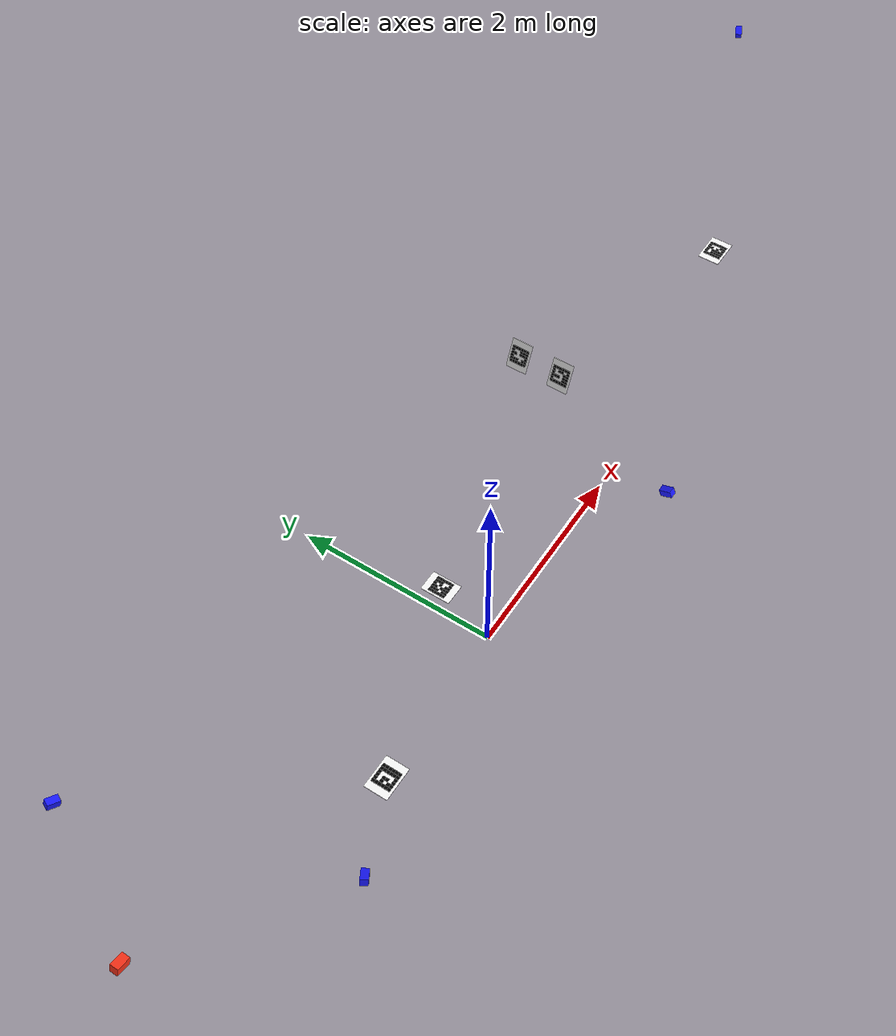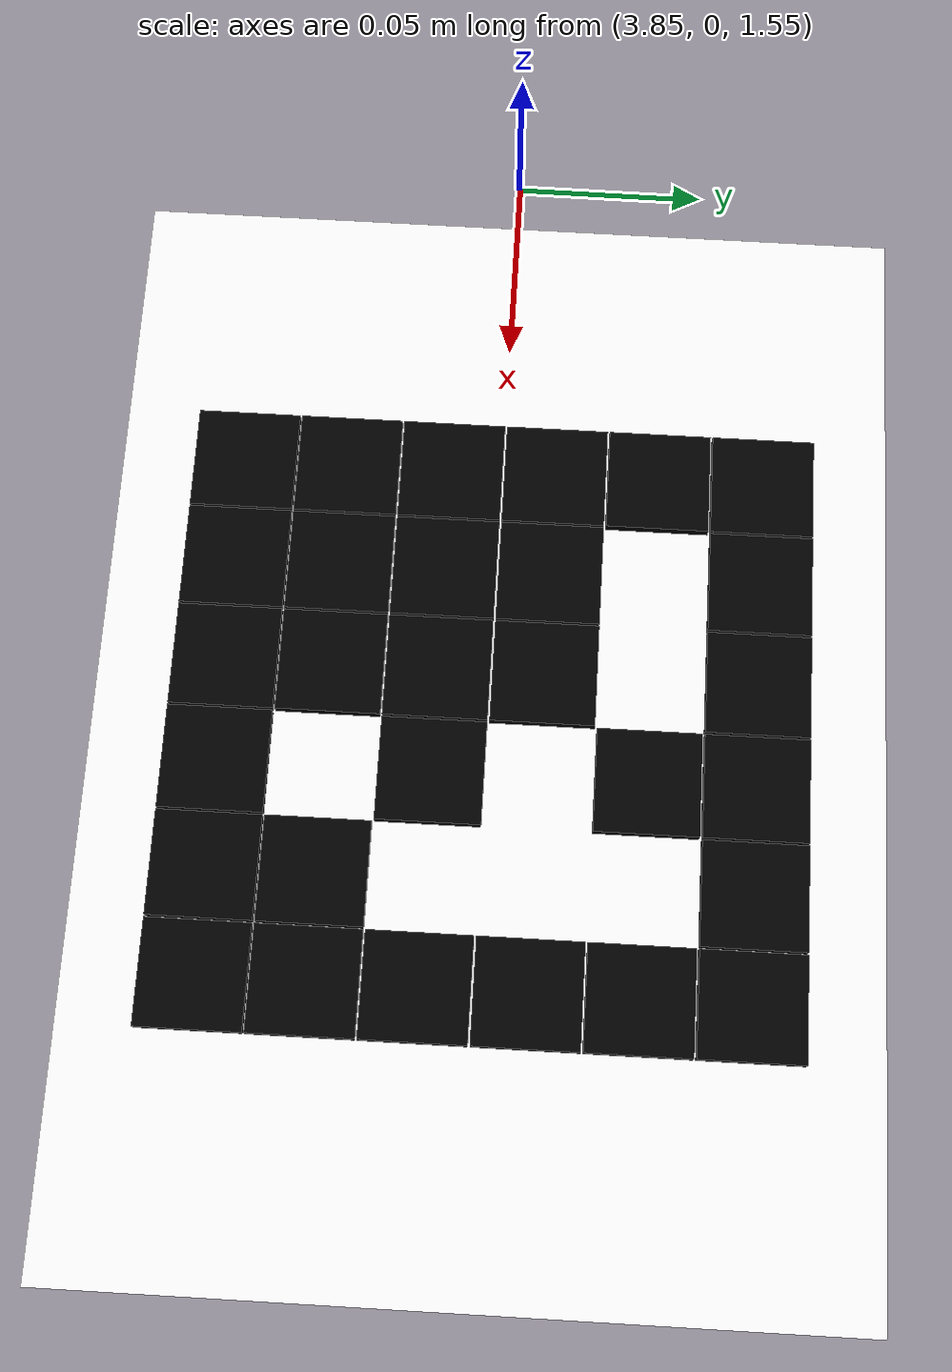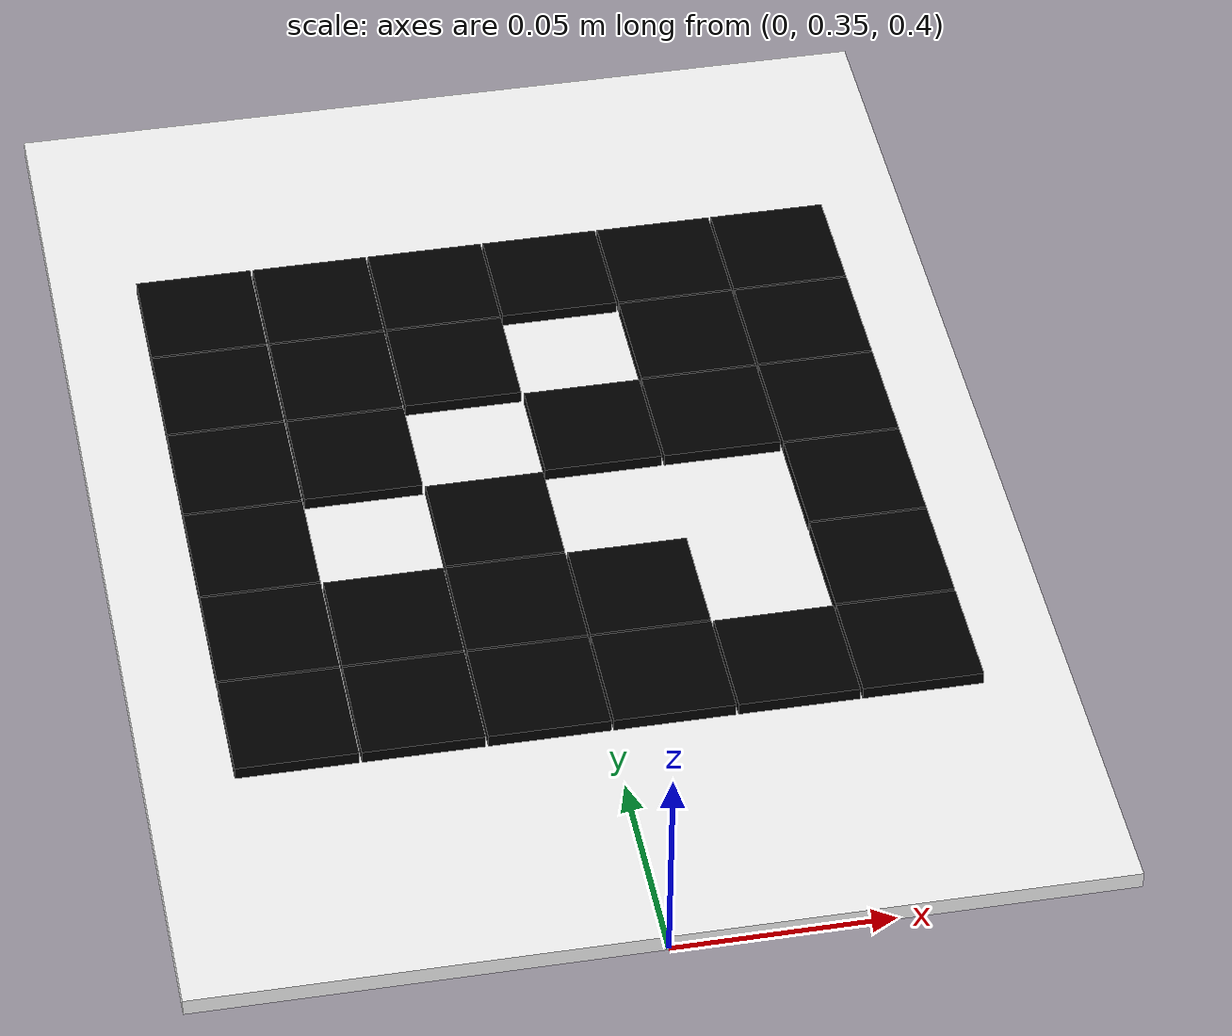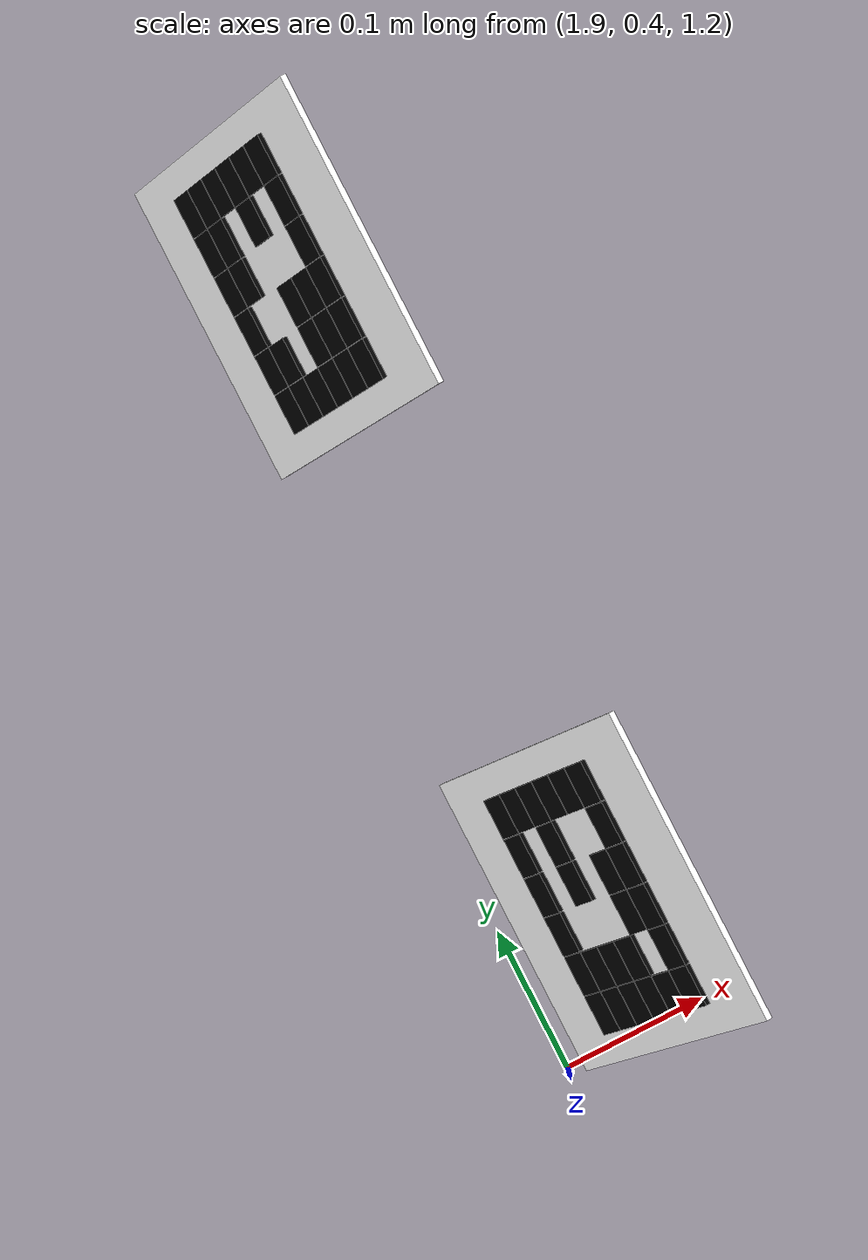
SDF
<sdf version="1.9">
 <world name="bus_real_data_camera_layout">
  <plugin filename="ignition-gazebo-physics-system" name="ignition::gazebo::systems::Physics"/>
  <plugin filename="ignition-gazebo-user-commands-system" name="ignition::gazebo::systems::UserCommands"/>
  <plugin filename="ignition-gazebo-scene-broadcaster-system" name="ignition::gazebo::systems::SceneBroadcaster"/>
  <plugin filename="ignition-gazebo-sensors-system" name="ignition::gazebo::systems::Sensors">
   <render_engine>ogre2</render_engine>
  </plugin>
  <physics name="default_physics" type="ignored">
   <max_step_size>0.01</max_step_size>
   <real_time_factor>1.0</real_time_factor>
  </physics>
  <scene>
   <ambient>0.32 0.32 0.31 1.0</ambient>
   <background>0.65 0.7 0.78 1.0</background>
   <shadows>true</shadows>
  </scene>
  <light name="sun" type="directional">
   <pose>0 0 10 0 0 0</pose>
   <diffuse>0.75 0.72 0.68 1.0</diffuse>
   <specular>0.2 0.2 0.18 1.0</specular>
   <direction>-1.0 0.03 -0.005</direction>
  </light>
  <model name="cam_edge_0">
   <static>true</static>
   <pose>0.58780793 -1.23455526 2.48732830 -0.02832886 0.39717862 1.54540010</pose>
   <link name="cam_edge_0_link">
    <visual name="cam_edge_0_visual">
     <geometry><box><size>0.10 0.06 0.06</size></box></geometry>
     <material><ambient>0.1 0.1 1.0 1</ambient><diffuse>0.1 0.1 1.0 1</diffuse></material>
    </visual>
    <sensor name="cam_edge_0_sensor" type="camera">
     <always_on>true</always_on>
     <update_rate>15</update_rate>
     <topic>/bus_real_data/cam_edge_0/image</topic>
     <camera>
      <horizontal_fov>1.2064567910</horizontal_fov>
      <image><width>1280</width><height>720</height><format>R8G8B8</format></image>
      <clip><near>0.05</near><far>100.0</far></clip>
     </camera>
    </sensor>
   </link>
  </model>
  <model name="cam_edge_1">
   <static>true</static>
   <pose>-3.97416732 0.97508650 2.53154268 0.01397153 0.28558128 -0.42471064</pose>
   <link name="cam_edge_1_link">
    <visual name="cam_edge_1_visual">
     <geometry><box><size>0.10 0.06 0.06</size></box></geometry>
     <material><ambient>0.1 0.1 1.0 1</ambient><diffuse>0.1 0.1 1.0 1</diffuse></material>
    </visual>
    <sensor name="cam_edge_1_sensor" type="camera">
     <always_on>true</always_on>
     <update_rate>15</update_rate>
     <topic>/bus_real_data/cam_edge_1/image</topic>
     <camera>
      <horizontal_fov>1.2058954091</horizontal_fov>
      <image><width>1280</width><height>720</height><format>R8G8B8</format></image>
      <clip><near>0.05</near><far>100.0</far></clip>
     </camera>
    </sensor>
   </link>
  </model>
  <model name="cam_edge_3">
   <static>true</static>
   <pose>-3.22735583 -1.06321426 2.45421090 0.03640120 0.33821970 0.53742790</pose>
   <link name="cam_edge_3_link">
    <visual name="cam_edge_3_visual">
     <geometry><box><size>0.10 0.06 0.06</size></box></geometry>
     <material><ambient>0.1 0.1 1.0 1</ambient><diffuse>0.1 0.1 1.0 1</diffuse></material>
    </visual>
    <sensor name="cam_edge_3_sensor" type="camera">
     <always_on>true</always_on>
     <update_rate>15</update_rate>
     <topic>/bus_real_data/cam_edge_3/image</topic>
     <camera>
      <horizontal_fov>1.2156537552</horizontal_fov>
      <image><width>1280</width><height>720</height><format>R8G8B8</format></image>
      <clip><near>0.05</near><far>100.0</far></clip>
     </camera>
    </sensor>
   </link>
  </model>
  <model name="cam_edge_5">
   <static>true</static>
   <pose>5.85885887 0.84841954 2.53876157 0.07529451 0.33545337 -2.70003495</pose>
   <link name="cam_edge_5_link">
    <visual name="cam_edge_5_visual">
     <geometry><box><size>0.10 0.06 0.06</size></box></geometry>
     <material><ambient>0.1 0.1 1.0 1</ambient><diffuse>0.1 0.1 1.0 1</diffuse></material>
    </visual>
    <sensor name="cam_edge_5_sensor" type="camera">
     <always_on>true</always_on>
     <update_rate>15</update_rate>
     <topic>/bus_real_data/cam_edge_5/image</topic>
     <camera>
      <horizontal_fov>1.2083025268</horizontal_fov>
      <image><width>1280</width><height>720</height><format>R8G8B8</format></image>
      <clip><near>0.05</near><far>100.0</far></clip>
     </camera>
    </sensor>
   </link>
  </model>
  <include>
   <uri>model://a4_aruco_marker_001</uri>
   <name>marker_001</name>
   <pose>-2.250000 -0.525000 1.630000 -1.57079633 0.00000000 -1.57079633</pose>
  </include>
  <include>
   <uri>model://a4_aruco_marker_006</uri>
   <name>marker_006</name>
   <pose>1.970000 0.500000 1.370000 -0.40000000 -0.00000000 -1.57079633</pose>
  </include>
  <include>
   <uri>model://a4_aruco_marker_007</uri>
   <name>marker_007</name>
   <pose>1.970000 0.935000 1.370000 -0.40000000 -0.00000000 -1.57079633</pose>
  </include>
  <include>
   <uri>model://a4_aruco_marker_011</uri>
   <name>marker_011</name>
   <pose>4.000000 0.000000 1.530000 -1.57079633 0.00000000 1.57079633</pose>
  </include>
  <model name="moving_calib_camera">
   <static>true</static>
   <pose>-4.5 0 2.2 0 0.3 0</pose>
   <link name="moving_calib_camera_link">
    <visual name="moving_calib_camera_visual">
     <geometry><box><size>0.12 0.07 0.07</size></box></geometry>
     <material><ambient>1.0 0.2 0.1 1</ambient><diffuse>1.0 0.2 0.1 1</diffuse></material>
    </visual>
    <sensor name="moving_calib_camera_sensor" type="camera">
     <always_on>true</always_on>
     <update_rate>15</update_rate>
     <topic>/bus_real_data/moving_calib_camera/image</topic>
     <camera>
      <horizontal_fov>1.2060225131</horizontal_fov>
      <image><width>1280</width><height>720</height><format>R8G8B8</format></image>
      <clip><near>0.05</near><far>100.0</far></clip>
     </camera>
    </sensor>
   </link>
  </model>
  <include>
   <name>aruco_ref_floor_14</name>
   <uri>model://a4_aruco_marker_014</uri>
   <pose>0 0.5 0.4 -1.570796327 0 0</pose>
  </include>
  <light name="temp_window_glare_spot" type="spot">
   <pose>5.8 1.4 2.25 0 0 2.95</pose>
   <diffuse>1.0 0.97 0.88 1.0</diffuse>
   <specular>0.45 0.45 0.4 1.0</specular>
   <direction>-1.0 -0.1 -0.02</direction>
   <attenuation>
    <range>30.0</range>
    <constant>0.7</constant>
    <linear>0.015</linear>
    <quadratic>0.0008</quadratic>
   </attenuation>
   <spot><inner_angle>0.25</inner_angle><outer_angle>0.75</outer_angle><falloff>0.9</falloff></spot>
  </light>
 </world>
</sdf>

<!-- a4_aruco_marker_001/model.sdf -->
<sdf version="1.9">
  <model name="a4_aruco_marker_001">
    <static>true</static>
    <link name="board_link">

      <visual name="a4_white_sheet">
        <pose>0 0 0 0 0 0</pose>
        <geometry>
          <box>
            <size>0.210000 0.004 0.297000</size>
          </box>
        </geometry>
        <material>
          <ambient>1 1 1 1</ambient>
          <diffuse>1 1 1 1</diffuse>
        </material>
      </visual>

        <visual name="black_cell_0_0">
          <pose>-0.070833 -0.004000 0.070833 0 0 0</pose>
          <geometry>
            <box>
              <size>0.027767 0.003 0.027767</size>
            </box>
          </geometry>
          <material>
            <ambient>0 0 0 1</ambient>
            <diffuse>0 0 0 1</diffuse>
          </material>
        </visual>

        <visual name="black_cell_0_1">
          <pose>-0.042500 -0.004000 0.070833 0 0 0</pose>
          <geometry>
            <box>
              <size>0.027767 0.003 0.027767</size>
            </box>
          </geometry>
          <material>
            <ambient>0 0 0 1</ambient>
            <diffuse>0 0 0 1</diffuse>
          </material>
        </visual>

        <visual name="black_cell_0_2">
          <pose>-0.014167 -0.004000 0.070833 0 0 0</pose>
          <geometry>
            <box>
              <size>0.027767 0.003 0.027767</size>
            </box>
          </geometry>
          <material>
            <ambient>0 0 0 1</ambient>
            <diffuse>0 0 0 1</diffuse>
          </material>
        </visual>

        <visual name="black_cell_0_3">
          <pose>0.014167 -0.004000 0.070833 0 0 0</pose>
          <geometry>
            <box>
              <size>0.027767 0.003 0.027767</size>
            </box>
          </geometry>
          <material>
            <ambient>0 0 0 1</ambient>
            <diffuse>0 0 0 1</diffuse>
          </material>
        </visual>

        <visual name="black_cell_0_4">
          <pose>0.042500 -0.004000 0.070833 0 0 0</pose>
          <geometry>
            <box>
              <size>0.027767 0.003 0.027767</size>
            </box>
          </geometry>
          <material>
            <ambient>0 0 0 1</ambient>
            <diffuse>0 0 0 1</diffuse>
          </material>
        </visual>

        <visual name="black_cell_0_5">
          <pose>0.070833 -0.004000 0.070833 0 0 0</pose>
          <geometry>
            <box>
              <size>0.027767 0.003 0.027767</size>
            </box>
          </geometry>
          <material>
            <ambient>0 0 0 1</ambient>
            <diffuse>0 0 0 1</diffuse>
          </material>
        </visual>

        <visual name="black_cell_1_0">
          <pose>-0.070833 -0.004000 0.042500 0 0 0</pose>
          <geometry>
            <box>
              <size>0.027767 0.003 0.027767</size>
            </box>
          </geometry>
          <material>
            <ambient>0 0 0 1</ambient>
            <diffuse>0 0 0 1</diffuse>
          </material>
        </visual>

        <visual name="black_cell_1_1">
          <pose>-0.042500 -0.004000 0.042500 0 0 0</pose>
          <geometry>
            <box>
              <size>0.027767 0.003 0.027767</size>
            </box>
          </geometry>
          <material>
            <ambient>0 0 0 1</ambient>
            <diffuse>0 0 0 1</diffuse>
          </material>
        </visual>

        <visual name="black_cell_1_2">
          <pose>-0.014167 -0.004000 0.042500 0 0 0</pose>
          <geometry>
            <box>
              <size>0.027767 0.003 0.027767</size>
            </box>
          </geometry>
          <material>
            <ambient>0 0 0 1</ambient>
            <diffuse>0 0 0 1</diffuse>
          </material>
        </visual>

        <visual name="black_cell_1_3">
          <pose>0.014167 -0.004000 0.042500 0 0 0</pose>
          <geometry>
            <box>
              <size>0.027767 0.003 0.027767</size>
            </box>
          </geometry>
          <material>
            <ambient>0 0 0 1</ambient>
            <diffuse>0 0 0 1</diffuse>
          </material>
        </visual>

        <visual name="black_cell_1_4">
          <pose>0.042500 -0.004000 0.042500 0 0 0</pose>
          <geometry>
            <box>
              <size>0.027767 0.003 0.027767</size>
            </box>
          </geometry>
          <material>
            <ambient>0 0 0 1</ambient>
            <diffuse>0 0 0 1</diffuse>
          </material>
        </visual>

        <visual name="black_cell_1_5">
          <pose>0.070833 -0.004000 0.042500 0 0 0</pose>
          <geometry>
            <box>
              <size>0.027767 0.003 0.027767</size>
            </box>
          </geometry>
          <material>
            <ambient>0 0 0 1</ambient>
            <diffuse>0 0 0 1</diffuse>
          </material>
        </visual>

        <visual name="black_cell_2_0">
          <pose>-0.070833 -0.004000 0.014167 0 0 0</pose>
          <geometry>
            <box>
              <size>0.027767 0.003 0.027767</size>
            </box>
          </geometry>
          <material>
            <ambient>0 0 0 1</ambient>
            <diffuse>0 0 0 1</diffuse>
          </material>
        </visual>

        <visual name="black_cell_2_5">
          <pose>0.070833 -0.004000 0.014167 0 0 0</pose>
          <geometry>
            <box>
              <size>0.027767 0.003 0.027767</size>
            </box>
          </geometry>
          <material>
            <ambient>0 0 0 1</ambient>
            <diffuse>0 0 0 1</diffuse>
          </material>
        </visual>

        <visual name="black_cell_3_0">
          <pose>-0.070833 -0.004000 -0.014167 0 0 0</pose>
          <geometry>
            <box>
              <size>0.027767 0.003 0.027767</size>
            </box>
          </geometry>
          <material>
            <ambient>0 0 0 1</ambient>
            <diffuse>0 0 0 1</diffuse>
          </material>
        </visual>

        <visual name="black_cell_3_2">
          <pose>-0.014167 -0.004000 -0.014167 0 0 0</pose>
          <geometry>
            <box>
              <size>0.027767 0.003 0.027767</size>
            </box>
          </geometry>
          <material>
            <ambient>0 0 0 1</ambient>
            <diffuse>0 0 0 1</diffuse>
          </material>
        </visual>

        <visual name="black_cell_3_3">
          <pose>0.014167 -0.004000 -0.014167 0 0 0</pose>
          <geometry>
            <box>
              <size>0.027767 0.003 0.027767</size>
            </box>
          </geometry>
          <material>
            <ambient>0 0 0 1</ambient>
            <diffuse>0 0 0 1</diffuse>
          </material>
        </visual>

        <visual name="black_cell_3_5">
          <pose>0.070833 -0.004000 -0.014167 0 0 0</pose>
          <geometry>
            <box>
              <size>0.027767 0.003 0.027767</size>
            </box>
          </geometry>
          <material>
            <ambient>0 0 0 1</ambient>
            <diffuse>0 0 0 1</diffuse>
          </material>
        </visual>

        <visual name="black_cell_4_0">
          <pose>-0.070833 -0.004000 -0.042500 0 0 0</pose>
          <geometry>
            <box>
              <size>0.027767 0.003 0.027767</size>
            </box>
          </geometry>
          <material>
            <ambient>0 0 0 1</ambient>
            <diffuse>0 0 0 1</diffuse>
          </material>
        </visual>

        <visual name="black_cell_4_2">
          <pose>-0.014167 -0.004000 -0.042500 0 0 0</pose>
          <geometry>
            <box>
              <size>0.027767 0.003 0.027767</size>
            </box>
          </geometry>
          <material>
            <ambient>0 0 0 1</ambient>
            <diffuse>0 0 0 1</diffuse>
          </material>
        </visual>

        <visual name="black_cell_4_4">
          <pose>0.042500 -0.004000 -0.042500 0 0 0</pose>
          <geometry>
            <box>
              <size>0.027767 0.003 0.027767</size>
            </box>
          </geometry>
          <material>
            <ambient>0 0 0 1</ambient>
            <diffuse>0 0 0 1</diffuse>
          </material>
        </visual>

        <visual name="black_cell_4_5">
          <pose>0.070833 -0.004000 -0.042500 0 0 0</pose>
          <geometry>
            <box>
              <size>0.027767 0.003 0.027767</size>
            </box>
          </geometry>
          <material>
            <ambient>0 0 0 1</ambient>
            <diffuse>0 0 0 1</diffuse>
          </material>
        </visual>

        <visual name="black_cell_5_0">
          <pose>-0.070833 -0.004000 -0.070833 0 0 0</pose>
          <geometry>
            <box>
              <size>0.027767 0.003 0.027767</size>
            </box>
          </geometry>
          <material>
            <ambient>0 0 0 1</ambient>
            <diffuse>0 0 0 1</diffuse>
          </material>
        </visual>

        <visual name="black_cell_5_1">
          <pose>-0.042500 -0.004000 -0.070833 0 0 0</pose>
          <geometry>
            <box>
              <size>0.027767 0.003 0.027767</size>
            </box>
          </geometry>
          <material>
            <ambient>0 0 0 1</ambient>
            <diffuse>0 0 0 1</diffuse>
          </material>
        </visual>

        <visual name="black_cell_5_2">
          <pose>-0.014167 -0.004000 -0.070833 0 0 0</pose>
          <geometry>
            <box>
              <size>0.027767 0.003 0.027767</size>
            </box>
          </geometry>
          <material>
            <ambient>0 0 0 1</ambient>
            <diffuse>0 0 0 1</diffuse>
          </material>
        </visual>

        <visual name="black_cell_5_3">
          <pose>0.014167 -0.004000 -0.070833 0 0 0</pose>
          <geometry>
            <box>
              <size>0.027767 0.003 0.027767</size>
            </box>
          </geometry>
          <material>
            <ambient>0 0 0 1</ambient>
            <diffuse>0 0 0 1</diffuse>
          </material>
        </visual>

        <visual name="black_cell_5_4">
          <pose>0.042500 -0.004000 -0.070833 0 0 0</pose>
          <geometry>
            <box>
              <size>0.027767 0.003 0.027767</size>
            </box>
          </geometry>
          <material>
            <ambient>0 0 0 1</ambient>
            <diffuse>0 0 0 1</diffuse>
          </material>
        </visual>

        <visual name="black_cell_5_5">
          <pose>0.070833 -0.004000 -0.070833 0 0 0</pose>
          <geometry>
            <box>
              <size>0.027767 0.003 0.027767</size>
            </box>
          </geometry>
          <material>
            <ambient>0 0 0 1</ambient>
            <diffuse>0 0 0 1</diffuse>
          </material>
        </visual>

    </link>
  </model>
</sdf>

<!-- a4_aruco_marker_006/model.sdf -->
<sdf version="1.9">
  <model name="a4_aruco_marker_006">
    <static>true</static>
    <link name="board_link">

      <visual name="a4_white_sheet">
        <pose>0 0 0 0 0 0</pose>
        <geometry>
          <box>
            <size>0.210000 0.004 0.297000</size>
          </box>
        </geometry>
        <material>
          <ambient>1 1 1 1</ambient>
          <diffuse>1 1 1 1</diffuse>
        </material>
      </visual>

        <visual name="black_cell_0_0">
          <pose>-0.070833 -0.004000 0.070833 0 0 0</pose>
          <geometry>
            <box>
              <size>0.027767 0.003 0.027767</size>
            </box>
          </geometry>
          <material>
            <ambient>0 0 0 1</ambient>
            <diffuse>0 0 0 1</diffuse>
          </material>
        </visual>

        <visual name="black_cell_0_1">
          <pose>-0.042500 -0.004000 0.070833 0 0 0</pose>
          <geometry>
            <box>
              <size>0.027767 0.003 0.027767</size>
            </box>
          </geometry>
          <material>
            <ambient>0 0 0 1</ambient>
            <diffuse>0 0 0 1</diffuse>
          </material>
        </visual>

        <visual name="black_cell_0_2">
          <pose>-0.014167 -0.004000 0.070833 0 0 0</pose>
          <geometry>
            <box>
              <size>0.027767 0.003 0.027767</size>
            </box>
          </geometry>
          <material>
            <ambient>0 0 0 1</ambient>
            <diffuse>0 0 0 1</diffuse>
          </material>
        </visual>

        <visual name="black_cell_0_3">
          <pose>0.014167 -0.004000 0.070833 0 0 0</pose>
          <geometry>
            <box>
              <size>0.027767 0.003 0.027767</size>
            </box>
          </geometry>
          <material>
            <ambient>0 0 0 1</ambient>
            <diffuse>0 0 0 1</diffuse>
          </material>
        </visual>

        <visual name="black_cell_0_4">
          <pose>0.042500 -0.004000 0.070833 0 0 0</pose>
          <geometry>
            <box>
              <size>0.027767 0.003 0.027767</size>
            </box>
          </geometry>
          <material>
            <ambient>0 0 0 1</ambient>
            <diffuse>0 0 0 1</diffuse>
          </material>
        </visual>

        <visual name="black_cell_0_5">
          <pose>0.070833 -0.004000 0.070833 0 0 0</pose>
          <geometry>
            <box>
              <size>0.027767 0.003 0.027767</size>
            </box>
          </geometry>
          <material>
            <ambient>0 0 0 1</ambient>
            <diffuse>0 0 0 1</diffuse>
          </material>
        </visual>

        <visual name="black_cell_1_0">
          <pose>-0.070833 -0.004000 0.042500 0 0 0</pose>
          <geometry>
            <box>
              <size>0.027767 0.003 0.027767</size>
            </box>
          </geometry>
          <material>
            <ambient>0 0 0 1</ambient>
            <diffuse>0 0 0 1</diffuse>
          </material>
        </visual>

        <visual name="black_cell_1_2">
          <pose>-0.014167 -0.004000 0.042500 0 0 0</pose>
          <geometry>
            <box>
              <size>0.027767 0.003 0.027767</size>
            </box>
          </geometry>
          <material>
            <ambient>0 0 0 1</ambient>
            <diffuse>0 0 0 1</diffuse>
          </material>
        </visual>

        <visual name="black_cell_1_3">
          <pose>0.014167 -0.004000 0.042500 0 0 0</pose>
          <geometry>
            <box>
              <size>0.027767 0.003 0.027767</size>
            </box>
          </geometry>
          <material>
            <ambient>0 0 0 1</ambient>
            <diffuse>0 0 0 1</diffuse>
          </material>
        </visual>

        <visual name="black_cell_1_5">
          <pose>0.070833 -0.004000 0.042500 0 0 0</pose>
          <geometry>
            <box>
              <size>0.027767 0.003 0.027767</size>
            </box>
          </geometry>
          <material>
            <ambient>0 0 0 1</ambient>
            <diffuse>0 0 0 1</diffuse>
          </material>
        </visual>

        <visual name="black_cell_2_0">
          <pose>-0.070833 -0.004000 0.014167 0 0 0</pose>
          <geometry>
            <box>
              <size>0.027767 0.003 0.027767</size>
            </box>
          </geometry>
          <material>
            <ambient>0 0 0 1</ambient>
            <diffuse>0 0 0 1</diffuse>
          </material>
        </visual>

        <visual name="black_cell_2_4">
          <pose>0.042500 -0.004000 0.014167 0 0 0</pose>
          <geometry>
            <box>
              <size>0.027767 0.003 0.027767</size>
            </box>
          </geometry>
          <material>
            <ambient>0 0 0 1</ambient>
            <diffuse>0 0 0 1</diffuse>
          </material>
        </visual>

        <visual name="black_cell_2_5">
          <pose>0.070833 -0.004000 0.014167 0 0 0</pose>
          <geometry>
            <box>
              <size>0.027767 0.003 0.027767</size>
            </box>
          </geometry>
          <material>
            <ambient>0 0 0 1</ambient>
            <diffuse>0 0 0 1</diffuse>
          </material>
        </visual>

        <visual name="black_cell_3_0">
          <pose>-0.070833 -0.004000 -0.014167 0 0 0</pose>
          <geometry>
            <box>
              <size>0.027767 0.003 0.027767</size>
            </box>
          </geometry>
          <material>
            <ambient>0 0 0 1</ambient>
            <diffuse>0 0 0 1</diffuse>
          </material>
        </visual>

        <visual name="black_cell_3_1">
          <pose>-0.042500 -0.004000 -0.014167 0 0 0</pose>
          <geometry>
            <box>
              <size>0.027767 0.003 0.027767</size>
            </box>
          </geometry>
          <material>
            <ambient>0 0 0 1</ambient>
            <diffuse>0 0 0 1</diffuse>
          </material>
        </visual>

        <visual name="black_cell_3_2">
          <pose>-0.014167 -0.004000 -0.014167 0 0 0</pose>
          <geometry>
            <box>
              <size>0.027767 0.003 0.027767</size>
            </box>
          </geometry>
          <material>
            <ambient>0 0 0 1</ambient>
            <diffuse>0 0 0 1</diffuse>
          </material>
        </visual>

        <visual name="black_cell_3_4">
          <pose>0.042500 -0.004000 -0.014167 0 0 0</pose>
          <geometry>
            <box>
              <size>0.027767 0.003 0.027767</size>
            </box>
          </geometry>
          <material>
            <ambient>0 0 0 1</ambient>
            <diffuse>0 0 0 1</diffuse>
          </material>
        </visual>

        <visual name="black_cell_3_5">
          <pose>0.070833 -0.004000 -0.014167 0 0 0</pose>
          <geometry>
            <box>
              <size>0.027767 0.003 0.027767</size>
            </box>
          </geometry>
          <material>
            <ambient>0 0 0 1</ambient>
            <diffuse>0 0 0 1</diffuse>
          </material>
        </visual>

        <visual name="black_cell_4_0">
          <pose>-0.070833 -0.004000 -0.042500 0 0 0</pose>
          <geometry>
            <box>
              <size>0.027767 0.003 0.027767</size>
            </box>
          </geometry>
          <material>
            <ambient>0 0 0 1</ambient>
            <diffuse>0 0 0 1</diffuse>
          </material>
        </visual>

        <visual name="black_cell_4_4">
          <pose>0.042500 -0.004000 -0.042500 0 0 0</pose>
          <geometry>
            <box>
              <size>0.027767 0.003 0.027767</size>
            </box>
          </geometry>
          <material>
            <ambient>0 0 0 1</ambient>
            <diffuse>0 0 0 1</diffuse>
          </material>
        </visual>

        <visual name="black_cell_4_5">
          <pose>0.070833 -0.004000 -0.042500 0 0 0</pose>
          <geometry>
            <box>
              <size>0.027767 0.003 0.027767</size>
            </box>
          </geometry>
          <material>
            <ambient>0 0 0 1</ambient>
            <diffuse>0 0 0 1</diffuse>
          </material>
        </visual>

        <visual name="black_cell_5_0">
          <pose>-0.070833 -0.004000 -0.070833 0 0 0</pose>
          <geometry>
            <box>
              <size>0.027767 0.003 0.027767</size>
            </box>
          </geometry>
          <material>
            <ambient>0 0 0 1</ambient>
            <diffuse>0 0 0 1</diffuse>
          </material>
        </visual>

        <visual name="black_cell_5_1">
          <pose>-0.042500 -0.004000 -0.070833 0 0 0</pose>
          <geometry>
            <box>
              <size>0.027767 0.003 0.027767</size>
            </box>
          </geometry>
          <material>
            <ambient>0 0 0 1</ambient>
            <diffuse>0 0 0 1</diffuse>
          </material>
        </visual>

        <visual name="black_cell_5_2">
          <pose>-0.014167 -0.004000 -0.070833 0 0 0</pose>
          <geometry>
            <box>
              <size>0.027767 0.003 0.027767</size>
            </box>
          </geometry>
          <material>
            <ambient>0 0 0 1</ambient>
            <diffuse>0 0 0 1</diffuse>
          </material>
        </visual>

        <visual name="black_cell_5_3">
          <pose>0.014167 -0.004000 -0.070833 0 0 0</pose>
          <geometry>
            <box>
              <size>0.027767 0.003 0.027767</size>
            </box>
          </geometry>
          <material>
            <ambient>0 0 0 1</ambient>
            <diffuse>0 0 0 1</diffuse>
          </material>
        </visual>

        <visual name="black_cell_5_4">
          <pose>0.042500 -0.004000 -0.070833 0 0 0</pose>
          <geometry>
            <box>
              <size>0.027767 0.003 0.027767</size>
            </box>
          </geometry>
          <material>
            <ambient>0 0 0 1</ambient>
            <diffuse>0 0 0 1</diffuse>
          </material>
        </visual>

        <visual name="black_cell_5_5">
          <pose>0.070833 -0.004000 -0.070833 0 0 0</pose>
          <geometry>
            <box>
              <size>0.027767 0.003 0.027767</size>
            </box>
          </geometry>
          <material>
            <ambient>0 0 0 1</ambient>
            <diffuse>0 0 0 1</diffuse>
          </material>
        </visual>

    </link>
  </model>
</sdf>

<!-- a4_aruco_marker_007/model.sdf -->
<sdf version="1.9">
  <model name="a4_aruco_marker_007">
    <static>true</static>
    <link name="board_link">

      <visual name="a4_white_sheet">
        <pose>0 0 0 0 0 0</pose>
        <geometry>
          <box>
            <size>0.210000 0.004 0.297000</size>
          </box>
        </geometry>
        <material>
          <ambient>1 1 1 1</ambient>
          <diffuse>1 1 1 1</diffuse>
        </material>
      </visual>

        <visual name="black_cell_0_0">
          <pose>-0.070833 -0.004000 0.070833 0 0 0</pose>
          <geometry>
            <box>
              <size>0.027767 0.003 0.027767</size>
            </box>
          </geometry>
          <material>
            <ambient>0 0 0 1</ambient>
            <diffuse>0 0 0 1</diffuse>
          </material>
        </visual>

        <visual name="black_cell_0_1">
          <pose>-0.042500 -0.004000 0.070833 0 0 0</pose>
          <geometry>
            <box>
              <size>0.027767 0.003 0.027767</size>
            </box>
          </geometry>
          <material>
            <ambient>0 0 0 1</ambient>
            <diffuse>0 0 0 1</diffuse>
          </material>
        </visual>

        <visual name="black_cell_0_2">
          <pose>-0.014167 -0.004000 0.070833 0 0 0</pose>
          <geometry>
            <box>
              <size>0.027767 0.003 0.027767</size>
            </box>
          </geometry>
          <material>
            <ambient>0 0 0 1</ambient>
            <diffuse>0 0 0 1</diffuse>
          </material>
        </visual>

        <visual name="black_cell_0_3">
          <pose>0.014167 -0.004000 0.070833 0 0 0</pose>
          <geometry>
            <box>
              <size>0.027767 0.003 0.027767</size>
            </box>
          </geometry>
          <material>
            <ambient>0 0 0 1</ambient>
            <diffuse>0 0 0 1</diffuse>
          </material>
        </visual>

        <visual name="black_cell_0_4">
          <pose>0.042500 -0.004000 0.070833 0 0 0</pose>
          <geometry>
            <box>
              <size>0.027767 0.003 0.027767</size>
            </box>
          </geometry>
          <material>
            <ambient>0 0 0 1</ambient>
            <diffuse>0 0 0 1</diffuse>
          </material>
        </visual>

        <visual name="black_cell_0_5">
          <pose>0.070833 -0.004000 0.070833 0 0 0</pose>
          <geometry>
            <box>
              <size>0.027767 0.003 0.027767</size>
            </box>
          </geometry>
          <material>
            <ambient>0 0 0 1</ambient>
            <diffuse>0 0 0 1</diffuse>
          </material>
        </visual>

        <visual name="black_cell_1_0">
          <pose>-0.070833 -0.004000 0.042500 0 0 0</pose>
          <geometry>
            <box>
              <size>0.027767 0.003 0.027767</size>
            </box>
          </geometry>
          <material>
            <ambient>0 0 0 1</ambient>
            <diffuse>0 0 0 1</diffuse>
          </material>
        </visual>

        <visual name="black_cell_1_3">
          <pose>0.014167 -0.004000 0.042500 0 0 0</pose>
          <geometry>
            <box>
              <size>0.027767 0.003 0.027767</size>
            </box>
          </geometry>
          <material>
            <ambient>0 0 0 1</ambient>
            <diffuse>0 0 0 1</diffuse>
          </material>
        </visual>

        <visual name="black_cell_1_4">
          <pose>0.042500 -0.004000 0.042500 0 0 0</pose>
          <geometry>
            <box>
              <size>0.027767 0.003 0.027767</size>
            </box>
          </geometry>
          <material>
            <ambient>0 0 0 1</ambient>
            <diffuse>0 0 0 1</diffuse>
          </material>
        </visual>

        <visual name="black_cell_1_5">
          <pose>0.070833 -0.004000 0.042500 0 0 0</pose>
          <geometry>
            <box>
              <size>0.027767 0.003 0.027767</size>
            </box>
          </geometry>
          <material>
            <ambient>0 0 0 1</ambient>
            <diffuse>0 0 0 1</diffuse>
          </material>
        </visual>

        <visual name="black_cell_2_0">
          <pose>-0.070833 -0.004000 0.014167 0 0 0</pose>
          <geometry>
            <box>
              <size>0.027767 0.003 0.027767</size>
            </box>
          </geometry>
          <material>
            <ambient>0 0 0 1</ambient>
            <diffuse>0 0 0 1</diffuse>
          </material>
        </visual>

        <visual name="black_cell_2_1">
          <pose>-0.042500 -0.004000 0.014167 0 0 0</pose>
          <geometry>
            <box>
              <size>0.027767 0.003 0.027767</size>
            </box>
          </geometry>
          <material>
            <ambient>0 0 0 1</ambient>
            <diffuse>0 0 0 1</diffuse>
          </material>
        </visual>

        <visual name="black_cell_2_3">
          <pose>0.014167 -0.004000 0.014167 0 0 0</pose>
          <geometry>
            <box>
              <size>0.027767 0.003 0.027767</size>
            </box>
          </geometry>
          <material>
            <ambient>0 0 0 1</ambient>
            <diffuse>0 0 0 1</diffuse>
          </material>
        </visual>

        <visual name="black_cell_2_4">
          <pose>0.042500 -0.004000 0.014167 0 0 0</pose>
          <geometry>
            <box>
              <size>0.027767 0.003 0.027767</size>
            </box>
          </geometry>
          <material>
            <ambient>0 0 0 1</ambient>
            <diffuse>0 0 0 1</diffuse>
          </material>
        </visual>

        <visual name="black_cell_2_5">
          <pose>0.070833 -0.004000 0.014167 0 0 0</pose>
          <geometry>
            <box>
              <size>0.027767 0.003 0.027767</size>
            </box>
          </geometry>
          <material>
            <ambient>0 0 0 1</ambient>
            <diffuse>0 0 0 1</diffuse>
          </material>
        </visual>

        <visual name="black_cell_3_0">
          <pose>-0.070833 -0.004000 -0.014167 0 0 0</pose>
          <geometry>
            <box>
              <size>0.027767 0.003 0.027767</size>
            </box>
          </geometry>
          <material>
            <ambient>0 0 0 1</ambient>
            <diffuse>0 0 0 1</diffuse>
          </material>
        </visual>

        <visual name="black_cell_3_5">
          <pose>0.070833 -0.004000 -0.014167 0 0 0</pose>
          <geometry>
            <box>
              <size>0.027767 0.003 0.027767</size>
            </box>
          </geometry>
          <material>
            <ambient>0 0 0 1</ambient>
            <diffuse>0 0 0 1</diffuse>
          </material>
        </visual>

        <visual name="black_cell_4_0">
          <pose>-0.070833 -0.004000 -0.042500 0 0 0</pose>
          <geometry>
            <box>
              <size>0.027767 0.003 0.027767</size>
            </box>
          </geometry>
          <material>
            <ambient>0 0 0 1</ambient>
            <diffuse>0 0 0 1</diffuse>
          </material>
        </visual>

        <visual name="black_cell_4_1">
          <pose>-0.042500 -0.004000 -0.042500 0 0 0</pose>
          <geometry>
            <box>
              <size>0.027767 0.003 0.027767</size>
            </box>
          </geometry>
          <material>
            <ambient>0 0 0 1</ambient>
            <diffuse>0 0 0 1</diffuse>
          </material>
        </visual>

        <visual name="black_cell_4_2">
          <pose>-0.014167 -0.004000 -0.042500 0 0 0</pose>
          <geometry>
            <box>
              <size>0.027767 0.003 0.027767</size>
            </box>
          </geometry>
          <material>
            <ambient>0 0 0 1</ambient>
            <diffuse>0 0 0 1</diffuse>
          </material>
        </visual>

        <visual name="black_cell_4_4">
          <pose>0.042500 -0.004000 -0.042500 0 0 0</pose>
          <geometry>
            <box>
              <size>0.027767 0.003 0.027767</size>
            </box>
          </geometry>
          <material>
            <ambient>0 0 0 1</ambient>
            <diffuse>0 0 0 1</diffuse>
          </material>
        </visual>

        <visual name="black_cell_4_5">
          <pose>0.070833 -0.004000 -0.042500 0 0 0</pose>
          <geometry>
            <box>
              <size>0.027767 0.003 0.027767</size>
            </box>
          </geometry>
          <material>
            <ambient>0 0 0 1</ambient>
            <diffuse>0 0 0 1</diffuse>
          </material>
        </visual>

        <visual name="black_cell_5_0">
          <pose>-0.070833 -0.004000 -0.070833 0 0 0</pose>
          <geometry>
            <box>
              <size>0.027767 0.003 0.027767</size>
            </box>
          </geometry>
          <material>
            <ambient>0 0 0 1</ambient>
            <diffuse>0 0 0 1</diffuse>
          </material>
        </visual>

        <visual name="black_cell_5_1">
          <pose>-0.042500 -0.004000 -0.070833 0 0 0</pose>
          <geometry>
            <box>
              <size>0.027767 0.003 0.027767</size>
            </box>
          </geometry>
          <material>
            <ambient>0 0 0 1</ambient>
            <diffuse>0 0 0 1</diffuse>
          </material>
        </visual>

        <visual name="black_cell_5_2">
          <pose>-0.014167 -0.004000 -0.070833 0 0 0</pose>
          <geometry>
            <box>
              <size>0.027767 0.003 0.027767</size>
            </box>
          </geometry>
          <material>
            <ambient>0 0 0 1</ambient>
            <diffuse>0 0 0 1</diffuse>
          </material>
        </visual>

        <visual name="black_cell_5_3">
          <pose>0.014167 -0.004000 -0.070833 0 0 0</pose>
          <geometry>
            <box>
              <size>0.027767 0.003 0.027767</size>
            </box>
          </geometry>
          <material>
            <ambient>0 0 0 1</ambient>
            <diffuse>0 0 0 1</diffuse>
          </material>
        </visual>

        <visual name="black_cell_5_4">
          <pose>0.042500 -0.004000 -0.070833 0 0 0</pose>
          <geometry>
            <box>
              <size>0.027767 0.003 0.027767</size>
            </box>
          </geometry>
          <material>
            <ambient>0 0 0 1</ambient>
            <diffuse>0 0 0 1</diffuse>
          </material>
        </visual>

        <visual name="black_cell_5_5">
          <pose>0.070833 -0.004000 -0.070833 0 0 0</pose>
          <geometry>
            <box>
              <size>0.027767 0.003 0.027767</size>
            </box>
          </geometry>
          <material>
            <ambient>0 0 0 1</ambient>
            <diffuse>0 0 0 1</diffuse>
          </material>
        </visual>

    </link>
  </model>
</sdf>

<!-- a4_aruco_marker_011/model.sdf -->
<sdf version="1.9">
  <model name="a4_aruco_marker_011">
    <static>true</static>
    <link name="board_link">

      <visual name="a4_white_sheet">
        <pose>0 0 0 0 0 0</pose>
        <geometry>
          <box>
            <size>0.210000 0.004 0.297000</size>
          </box>
        </geometry>
        <material>
          <ambient>1 1 1 1</ambient>
          <diffuse>1 1 1 1</diffuse>
        </material>
      </visual>

        <visual name="black_cell_0_0">
          <pose>-0.070833 -0.004000 0.070833 0 0 0</pose>
          <geometry>
            <box>
              <size>0.027767 0.003 0.027767</size>
            </box>
          </geometry>
          <material>
            <ambient>0 0 0 1</ambient>
            <diffuse>0 0 0 1</diffuse>
          </material>
        </visual>

        <visual name="black_cell_0_1">
          <pose>-0.042500 -0.004000 0.070833 0 0 0</pose>
          <geometry>
            <box>
              <size>0.027767 0.003 0.027767</size>
            </box>
          </geometry>
          <material>
            <ambient>0 0 0 1</ambient>
            <diffuse>0 0 0 1</diffuse>
          </material>
        </visual>

        <visual name="black_cell_0_2">
          <pose>-0.014167 -0.004000 0.070833 0 0 0</pose>
          <geometry>
            <box>
              <size>0.027767 0.003 0.027767</size>
            </box>
          </geometry>
          <material>
            <ambient>0 0 0 1</ambient>
            <diffuse>0 0 0 1</diffuse>
          </material>
        </visual>

        <visual name="black_cell_0_3">
          <pose>0.014167 -0.004000 0.070833 0 0 0</pose>
          <geometry>
            <box>
              <size>0.027767 0.003 0.027767</size>
            </box>
          </geometry>
          <material>
            <ambient>0 0 0 1</ambient>
            <diffuse>0 0 0 1</diffuse>
          </material>
        </visual>

        <visual name="black_cell_0_4">
          <pose>0.042500 -0.004000 0.070833 0 0 0</pose>
          <geometry>
            <box>
              <size>0.027767 0.003 0.027767</size>
            </box>
          </geometry>
          <material>
            <ambient>0 0 0 1</ambient>
            <diffuse>0 0 0 1</diffuse>
          </material>
        </visual>

        <visual name="black_cell_0_5">
          <pose>0.070833 -0.004000 0.070833 0 0 0</pose>
          <geometry>
            <box>
              <size>0.027767 0.003 0.027767</size>
            </box>
          </geometry>
          <material>
            <ambient>0 0 0 1</ambient>
            <diffuse>0 0 0 1</diffuse>
          </material>
        </visual>

        <visual name="black_cell_1_0">
          <pose>-0.070833 -0.004000 0.042500 0 0 0</pose>
          <geometry>
            <box>
              <size>0.027767 0.003 0.027767</size>
            </box>
          </geometry>
          <material>
            <ambient>0 0 0 1</ambient>
            <diffuse>0 0 0 1</diffuse>
          </material>
        </visual>

        <visual name="black_cell_1_1">
          <pose>-0.042500 -0.004000 0.042500 0 0 0</pose>
          <geometry>
            <box>
              <size>0.027767 0.003 0.027767</size>
            </box>
          </geometry>
          <material>
            <ambient>0 0 0 1</ambient>
            <diffuse>0 0 0 1</diffuse>
          </material>
        </visual>

        <visual name="black_cell_1_2">
          <pose>-0.014167 -0.004000 0.042500 0 0 0</pose>
          <geometry>
            <box>
              <size>0.027767 0.003 0.027767</size>
            </box>
          </geometry>
          <material>
            <ambient>0 0 0 1</ambient>
            <diffuse>0 0 0 1</diffuse>
          </material>
        </visual>

        <visual name="black_cell_1_3">
          <pose>0.014167 -0.004000 0.042500 0 0 0</pose>
          <geometry>
            <box>
              <size>0.027767 0.003 0.027767</size>
            </box>
          </geometry>
          <material>
            <ambient>0 0 0 1</ambient>
            <diffuse>0 0 0 1</diffuse>
          </material>
        </visual>

        <visual name="black_cell_1_5">
          <pose>0.070833 -0.004000 0.042500 0 0 0</pose>
          <geometry>
            <box>
              <size>0.027767 0.003 0.027767</size>
            </box>
          </geometry>
          <material>
            <ambient>0 0 0 1</ambient>
            <diffuse>0 0 0 1</diffuse>
          </material>
        </visual>

        <visual name="black_cell_2_0">
          <pose>-0.070833 -0.004000 0.014167 0 0 0</pose>
          <geometry>
            <box>
              <size>0.027767 0.003 0.027767</size>
            </box>
          </geometry>
          <material>
            <ambient>0 0 0 1</ambient>
            <diffuse>0 0 0 1</diffuse>
          </material>
        </visual>

        <visual name="black_cell_2_1">
          <pose>-0.042500 -0.004000 0.014167 0 0 0</pose>
          <geometry>
            <box>
              <size>0.027767 0.003 0.027767</size>
            </box>
          </geometry>
          <material>
            <ambient>0 0 0 1</ambient>
            <diffuse>0 0 0 1</diffuse>
          </material>
        </visual>

        <visual name="black_cell_2_2">
          <pose>-0.014167 -0.004000 0.014167 0 0 0</pose>
          <geometry>
            <box>
              <size>0.027767 0.003 0.027767</size>
            </box>
          </geometry>
          <material>
            <ambient>0 0 0 1</ambient>
            <diffuse>0 0 0 1</diffuse>
          </material>
        </visual>

        <visual name="black_cell_2_3">
          <pose>0.014167 -0.004000 0.014167 0 0 0</pose>
          <geometry>
            <box>
              <size>0.027767 0.003 0.027767</size>
            </box>
          </geometry>
          <material>
            <ambient>0 0 0 1</ambient>
            <diffuse>0 0 0 1</diffuse>
          </material>
        </visual>

        <visual name="black_cell_2_5">
          <pose>0.070833 -0.004000 0.014167 0 0 0</pose>
          <geometry>
            <box>
              <size>0.027767 0.003 0.027767</size>
            </box>
          </geometry>
          <material>
            <ambient>0 0 0 1</ambient>
            <diffuse>0 0 0 1</diffuse>
          </material>
        </visual>

        <visual name="black_cell_3_0">
          <pose>-0.070833 -0.004000 -0.014167 0 0 0</pose>
          <geometry>
            <box>
              <size>0.027767 0.003 0.027767</size>
            </box>
          </geometry>
          <material>
            <ambient>0 0 0 1</ambient>
            <diffuse>0 0 0 1</diffuse>
          </material>
        </visual>

        <visual name="black_cell_3_2">
          <pose>-0.014167 -0.004000 -0.014167 0 0 0</pose>
          <geometry>
            <box>
              <size>0.027767 0.003 0.027767</size>
            </box>
          </geometry>
          <material>
            <ambient>0 0 0 1</ambient>
            <diffuse>0 0 0 1</diffuse>
          </material>
        </visual>

        <visual name="black_cell_3_4">
          <pose>0.042500 -0.004000 -0.014167 0 0 0</pose>
          <geometry>
            <box>
              <size>0.027767 0.003 0.027767</size>
            </box>
          </geometry>
          <material>
            <ambient>0 0 0 1</ambient>
            <diffuse>0 0 0 1</diffuse>
          </material>
        </visual>

        <visual name="black_cell_3_5">
          <pose>0.070833 -0.004000 -0.014167 0 0 0</pose>
          <geometry>
            <box>
              <size>0.027767 0.003 0.027767</size>
            </box>
          </geometry>
          <material>
            <ambient>0 0 0 1</ambient>
            <diffuse>0 0 0 1</diffuse>
          </material>
        </visual>

        <visual name="black_cell_4_0">
          <pose>-0.070833 -0.004000 -0.042500 0 0 0</pose>
          <geometry>
            <box>
              <size>0.027767 0.003 0.027767</size>
            </box>
          </geometry>
          <material>
            <ambient>0 0 0 1</ambient>
            <diffuse>0 0 0 1</diffuse>
          </material>
        </visual>

        <visual name="black_cell_4_1">
          <pose>-0.042500 -0.004000 -0.042500 0 0 0</pose>
          <geometry>
            <box>
              <size>0.027767 0.003 0.027767</size>
            </box>
          </geometry>
          <material>
            <ambient>0 0 0 1</ambient>
            <diffuse>0 0 0 1</diffuse>
          </material>
        </visual>

        <visual name="black_cell_4_5">
          <pose>0.070833 -0.004000 -0.042500 0 0 0</pose>
          <geometry>
            <box>
              <size>0.027767 0.003 0.027767</size>
            </box>
          </geometry>
          <material>
            <ambient>0 0 0 1</ambient>
            <diffuse>0 0 0 1</diffuse>
          </material>
        </visual>

        <visual name="black_cell_5_0">
          <pose>-0.070833 -0.004000 -0.070833 0 0 0</pose>
          <geometry>
            <box>
              <size>0.027767 0.003 0.027767</size>
            </box>
          </geometry>
          <material>
            <ambient>0 0 0 1</ambient>
            <diffuse>0 0 0 1</diffuse>
          </material>
        </visual>

        <visual name="black_cell_5_1">
          <pose>-0.042500 -0.004000 -0.070833 0 0 0</pose>
          <geometry>
            <box>
              <size>0.027767 0.003 0.027767</size>
            </box>
          </geometry>
          <material>
            <ambient>0 0 0 1</ambient>
            <diffuse>0 0 0 1</diffuse>
          </material>
        </visual>

        <visual name="black_cell_5_2">
          <pose>-0.014167 -0.004000 -0.070833 0 0 0</pose>
          <geometry>
            <box>
              <size>0.027767 0.003 0.027767</size>
            </box>
          </geometry>
          <material>
            <ambient>0 0 0 1</ambient>
            <diffuse>0 0 0 1</diffuse>
          </material>
        </visual>

        <visual name="black_cell_5_3">
          <pose>0.014167 -0.004000 -0.070833 0 0 0</pose>
          <geometry>
            <box>
              <size>0.027767 0.003 0.027767</size>
            </box>
          </geometry>
          <material>
            <ambient>0 0 0 1</ambient>
            <diffuse>0 0 0 1</diffuse>
          </material>
        </visual>

        <visual name="black_cell_5_4">
          <pose>0.042500 -0.004000 -0.070833 0 0 0</pose>
          <geometry>
            <box>
              <size>0.027767 0.003 0.027767</size>
            </box>
          </geometry>
          <material>
            <ambient>0 0 0 1</ambient>
            <diffuse>0 0 0 1</diffuse>
          </material>
        </visual>

        <visual name="black_cell_5_5">
          <pose>0.070833 -0.004000 -0.070833 0 0 0</pose>
          <geometry>
            <box>
              <size>0.027767 0.003 0.027767</size>
            </box>
          </geometry>
          <material>
            <ambient>0 0 0 1</ambient>
            <diffuse>0 0 0 1</diffuse>
          </material>
        </visual>

    </link>
  </model>
</sdf>

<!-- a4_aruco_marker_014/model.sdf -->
<sdf version="1.9">
  <model name="a4_aruco_marker_014">
    <static>true</static>
    <link name="board_link">

      <visual name="a4_white_sheet">
        <pose>0 0 0 0 0 0</pose>
        <geometry>
          <box>
            <size>0.210000 0.004 0.297000</size>
          </box>
        </geometry>
        <material>
          <ambient>1 1 1 1</ambient>
          <diffuse>1 1 1 1</diffuse>
        </material>
      </visual>

        <visual name="black_cell_0_0">
          <pose>-0.070833 -0.004000 0.070833 0 0 0</pose>
          <geometry>
            <box>
              <size>0.027767 0.003 0.027767</size>
            </box>
          </geometry>
          <material>
            <ambient>0 0 0 1</ambient>
            <diffuse>0 0 0 1</diffuse>
          </material>
        </visual>

        <visual name="black_cell_0_1">
          <pose>-0.042500 -0.004000 0.070833 0 0 0</pose>
          <geometry>
            <box>
              <size>0.027767 0.003 0.027767</size>
            </box>
          </geometry>
          <material>
            <ambient>0 0 0 1</ambient>
            <diffuse>0 0 0 1</diffuse>
          </material>
        </visual>

        <visual name="black_cell_0_2">
          <pose>-0.014167 -0.004000 0.070833 0 0 0</pose>
          <geometry>
            <box>
              <size>0.027767 0.003 0.027767</size>
            </box>
          </geometry>
          <material>
            <ambient>0 0 0 1</ambient>
            <diffuse>0 0 0 1</diffuse>
          </material>
        </visual>

        <visual name="black_cell_0_3">
          <pose>0.014167 -0.004000 0.070833 0 0 0</pose>
          <geometry>
            <box>
              <size>0.027767 0.003 0.027767</size>
            </box>
          </geometry>
          <material>
            <ambient>0 0 0 1</ambient>
            <diffuse>0 0 0 1</diffuse>
          </material>
        </visual>

        <visual name="black_cell_0_4">
          <pose>0.042500 -0.004000 0.070833 0 0 0</pose>
          <geometry>
            <box>
              <size>0.027767 0.003 0.027767</size>
            </box>
          </geometry>
          <material>
            <ambient>0 0 0 1</ambient>
            <diffuse>0 0 0 1</diffuse>
          </material>
        </visual>

        <visual name="black_cell_0_5">
          <pose>0.070833 -0.004000 0.070833 0 0 0</pose>
          <geometry>
            <box>
              <size>0.027767 0.003 0.027767</size>
            </box>
          </geometry>
          <material>
            <ambient>0 0 0 1</ambient>
            <diffuse>0 0 0 1</diffuse>
          </material>
        </visual>

        <visual name="black_cell_1_0">
          <pose>-0.070833 -0.004000 0.042500 0 0 0</pose>
          <geometry>
            <box>
              <size>0.027767 0.003 0.027767</size>
            </box>
          </geometry>
          <material>
            <ambient>0 0 0 1</ambient>
            <diffuse>0 0 0 1</diffuse>
          </material>
        </visual>

        <visual name="black_cell_1_1">
          <pose>-0.042500 -0.004000 0.042500 0 0 0</pose>
          <geometry>
            <box>
              <size>0.027767 0.003 0.027767</size>
            </box>
          </geometry>
          <material>
            <ambient>0 0 0 1</ambient>
            <diffuse>0 0 0 1</diffuse>
          </material>
        </visual>

        <visual name="black_cell_1_2">
          <pose>-0.014167 -0.004000 0.042500 0 0 0</pose>
          <geometry>
            <box>
              <size>0.027767 0.003 0.027767</size>
            </box>
          </geometry>
          <material>
            <ambient>0 0 0 1</ambient>
            <diffuse>0 0 0 1</diffuse>
          </material>
        </visual>

        <visual name="black_cell_1_4">
          <pose>0.042500 -0.004000 0.042500 0 0 0</pose>
          <geometry>
            <box>
              <size>0.027767 0.003 0.027767</size>
            </box>
          </geometry>
          <material>
            <ambient>0 0 0 1</ambient>
            <diffuse>0 0 0 1</diffuse>
          </material>
        </visual>

        <visual name="black_cell_1_5">
          <pose>0.070833 -0.004000 0.042500 0 0 0</pose>
          <geometry>
            <box>
              <size>0.027767 0.003 0.027767</size>
            </box>
          </geometry>
          <material>
            <ambient>0 0 0 1</ambient>
            <diffuse>0 0 0 1</diffuse>
          </material>
        </visual>

        <visual name="black_cell_2_0">
          <pose>-0.070833 -0.004000 0.014167 0 0 0</pose>
          <geometry>
            <box>
              <size>0.027767 0.003 0.027767</size>
            </box>
          </geometry>
          <material>
            <ambient>0 0 0 1</ambient>
            <diffuse>0 0 0 1</diffuse>
          </material>
        </visual>

        <visual name="black_cell_2_1">
          <pose>-0.042500 -0.004000 0.014167 0 0 0</pose>
          <geometry>
            <box>
              <size>0.027767 0.003 0.027767</size>
            </box>
          </geometry>
          <material>
            <ambient>0 0 0 1</ambient>
            <diffuse>0 0 0 1</diffuse>
          </material>
        </visual>

        <visual name="black_cell_2_3">
          <pose>0.014167 -0.004000 0.014167 0 0 0</pose>
          <geometry>
            <box>
              <size>0.027767 0.003 0.027767</size>
            </box>
          </geometry>
          <material>
            <ambient>0 0 0 1</ambient>
            <diffuse>0 0 0 1</diffuse>
          </material>
        </visual>

        <visual name="black_cell_2_4">
          <pose>0.042500 -0.004000 0.014167 0 0 0</pose>
          <geometry>
            <box>
              <size>0.027767 0.003 0.027767</size>
            </box>
          </geometry>
          <material>
            <ambient>0 0 0 1</ambient>
            <diffuse>0 0 0 1</diffuse>
          </material>
        </visual>

        <visual name="black_cell_2_5">
          <pose>0.070833 -0.004000 0.014167 0 0 0</pose>
          <geometry>
            <box>
              <size>0.027767 0.003 0.027767</size>
            </box>
          </geometry>
          <material>
            <ambient>0 0 0 1</ambient>
            <diffuse>0 0 0 1</diffuse>
          </material>
        </visual>

        <visual name="black_cell_3_0">
          <pose>-0.070833 -0.004000 -0.014167 0 0 0</pose>
          <geometry>
            <box>
              <size>0.027767 0.003 0.027767</size>
            </box>
          </geometry>
          <material>
            <ambient>0 0 0 1</ambient>
            <diffuse>0 0 0 1</diffuse>
          </material>
        </visual>

        <visual name="black_cell_3_2">
          <pose>-0.014167 -0.004000 -0.014167 0 0 0</pose>
          <geometry>
            <box>
              <size>0.027767 0.003 0.027767</size>
            </box>
          </geometry>
          <material>
            <ambient>0 0 0 1</ambient>
            <diffuse>0 0 0 1</diffuse>
          </material>
        </visual>

        <visual name="black_cell_3_5">
          <pose>0.070833 -0.004000 -0.014167 0 0 0</pose>
          <geometry>
            <box>
              <size>0.027767 0.003 0.027767</size>
            </box>
          </geometry>
          <material>
            <ambient>0 0 0 1</ambient>
            <diffuse>0 0 0 1</diffuse>
          </material>
        </visual>

        <visual name="black_cell_4_0">
          <pose>-0.070833 -0.004000 -0.042500 0 0 0</pose>
          <geometry>
            <box>
              <size>0.027767 0.003 0.027767</size>
            </box>
          </geometry>
          <material>
            <ambient>0 0 0 1</ambient>
            <diffuse>0 0 0 1</diffuse>
          </material>
        </visual>

        <visual name="black_cell_4_1">
          <pose>-0.042500 -0.004000 -0.042500 0 0 0</pose>
          <geometry>
            <box>
              <size>0.027767 0.003 0.027767</size>
            </box>
          </geometry>
          <material>
            <ambient>0 0 0 1</ambient>
            <diffuse>0 0 0 1</diffuse>
          </material>
        </visual>

        <visual name="black_cell_4_2">
          <pose>-0.014167 -0.004000 -0.042500 0 0 0</pose>
          <geometry>
            <box>
              <size>0.027767 0.003 0.027767</size>
            </box>
          </geometry>
          <material>
            <ambient>0 0 0 1</ambient>
            <diffuse>0 0 0 1</diffuse>
          </material>
        </visual>

        <visual name="black_cell_4_3">
          <pose>0.014167 -0.004000 -0.042500 0 0 0</pose>
          <geometry>
            <box>
              <size>0.027767 0.003 0.027767</size>
            </box>
          </geometry>
          <material>
            <ambient>0 0 0 1</ambient>
            <diffuse>0 0 0 1</diffuse>
          </material>
        </visual>

        <visual name="black_cell_4_5">
          <pose>0.070833 -0.004000 -0.042500 0 0 0</pose>
          <geometry>
            <box>
              <size>0.027767 0.003 0.027767</size>
            </box>
          </geometry>
          <material>
            <ambient>0 0 0 1</ambient>
            <diffuse>0 0 0 1</diffuse>
          </material>
        </visual>

        <visual name="black_cell_5_0">
          <pose>-0.070833 -0.004000 -0.070833 0 0 0</pose>
          <geometry>
            <box>
              <size>0.027767 0.003 0.027767</size>
            </box>
          </geometry>
          <material>
            <ambient>0 0 0 1</ambient>
            <diffuse>0 0 0 1</diffuse>
          </material>
        </visual>

        <visual name="black_cell_5_1">
          <pose>-0.042500 -0.004000 -0.070833 0 0 0</pose>
          <geometry>
            <box>
              <size>0.027767 0.003 0.027767</size>
            </box>
          </geometry>
          <material>
            <ambient>0 0 0 1</ambient>
            <diffuse>0 0 0 1</diffuse>
          </material>
        </visual>

        <visual name="black_cell_5_2">
          <pose>-0.014167 -0.004000 -0.070833 0 0 0</pose>
          <geometry>
            <box>
              <size>0.027767 0.003 0.027767</size>
            </box>
          </geometry>
          <material>
            <ambient>0 0 0 1</ambient>
            <diffuse>0 0 0 1</diffuse>
          </material>
        </visual>

        <visual name="black_cell_5_3">
          <pose>0.014167 -0.004000 -0.070833 0 0 0</pose>
          <geometry>
            <box>
              <size>0.027767 0.003 0.027767</size>
            </box>
          </geometry>
          <material>
            <ambient>0 0 0 1</ambient>
            <diffuse>0 0 0 1</diffuse>
          </material>
        </visual>

        <visual name="black_cell_5_4">
          <pose>0.042500 -0.004000 -0.070833 0 0 0</pose>
          <geometry>
            <box>
              <size>0.027767 0.003 0.027767</size>
            </box>
          </geometry>
          <material>
            <ambient>0 0 0 1</ambient>
            <diffuse>0 0 0 1</diffuse>
          </material>
        </visual>

        <visual name="black_cell_5_5">
          <pose>0.070833 -0.004000 -0.070833 0 0 0</pose>
          <geometry>
            <box>
              <size>0.027767 0.003 0.027767</size>
            </box>
          </geometry>
          <material>
            <ambient>0 0 0 1</ambient>
            <diffuse>0 0 0 1</diffuse>
          </material>
        </visual>

    </link>
  </model>
</sdf>
